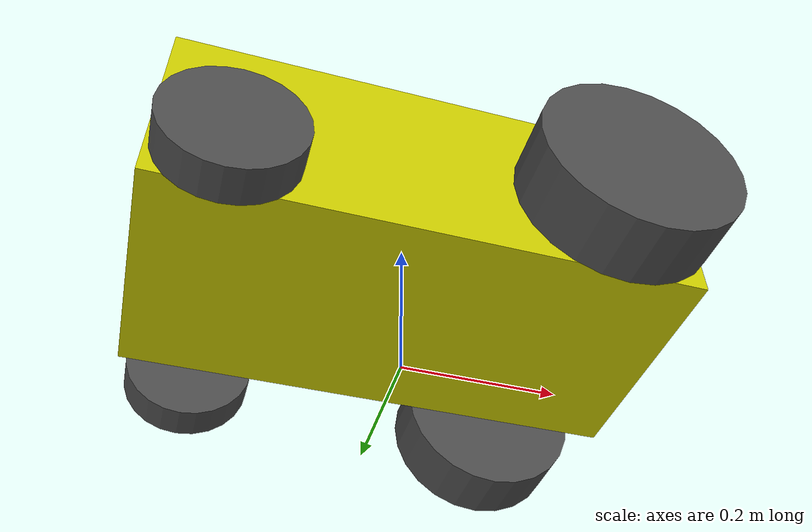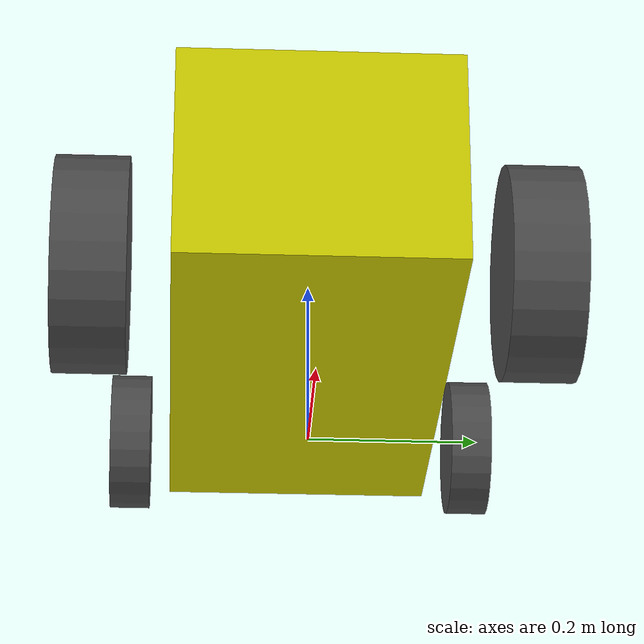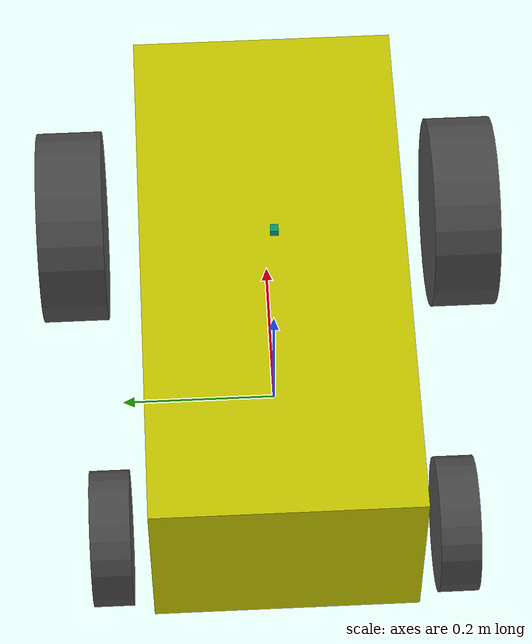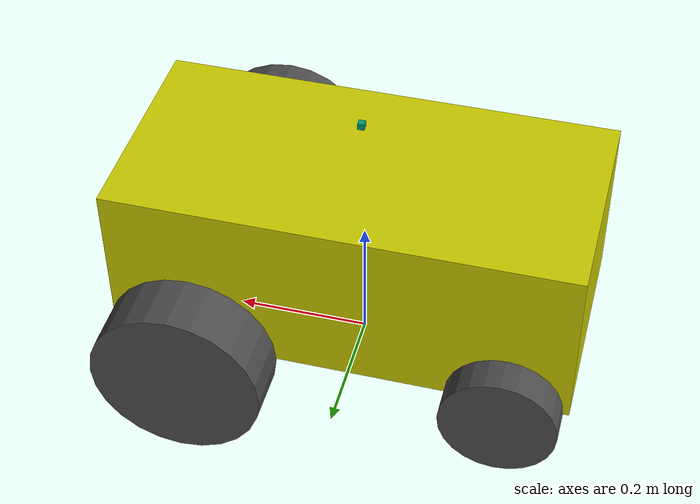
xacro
<?xml version="1.0"?>
<robot name="scrappy" xmlns:xacro="http://www.ros.org/wiki/xacro">

	<!-- Included URDF/XACRO Files -->
	<xacro:include filename="$(find bbblue_bot_description)/urdf/scrappy_materials.urdf.xacro" />
	<xacro:include filename="$(find bbblue_bot_description)/urdf/scrappy_wheel.urdf.xacro" />
	<xacro:include filename="$(find bbblue_bot_description)/urdf/scrappy_caster.urdf.xacro" />

	<!-- PROPERTY LIST -->
	<!--All units in m-kg-s-radians unit system -->
	<xacro:property name="M_PI" value="3.1415926535897931" />

	<!-- Main Body-base -->
	<xacro:property name="base_x_size" value="0.685" />
	<xacro:property name="base_y_size" value="0.33" />
	<xacro:property name="base_z_size" value="0.26" />
	<xacro:property name="base_mass" value="35" /> <!-- in kg-->

	<!--Inertial macros for the box and cylinder. Units are kg*m^2-->
	<xacro:macro name="box_inertia" params="m x y z">
		<inertia  ixx="${m*(y*y+z*z)/12}" ixy = "0" ixz = "0"
			iyy="${m*(x*x+z*z)/12}" iyz = "0"
			izz="${m*(x*x+z*z)/12}" />
	</xacro:macro>

	<!-- BASE-FOOTPRINT -->
	<!-- base_footprint is a fictitious link(frame) that is on the ground right below base_link origin -->
	<link name="base_footprint">
		<visual>
				<origin xyz="0 0 0" rpy="0 0 0" />
				<geometry>
						<box size="0.001 0.001 0.001" />
				</geometry>
		</visual>
		<inertial>
			<mass value="0.0001" />
			<origin xyz="0 0 0" />
			<inertia ixx="0.0001" ixy="0.0" ixz="0.0"
				iyy="0.0001" iyz="0.0"
				izz="0.0001" />
		</inertial>
	</link>

	<gazebo reference="base_footprint">
		<turnGravityOff>false</turnGravityOff>
	</gazebo>

	<joint name="base_footprint_joint" type="fixed">
	<origin xyz="0 0 0.2" rpy="0 0 0" />
		<parent link="base_footprint"/>
		<child link="base_link" />
	</joint>

	<!-- BASE-LINK -->
	<!--Actual body/chassis of the robot-->
	<link name="base_link">
		<visual>
			<origin xyz="0 0 0" rpy="0 0 0" />
			<geometry>
				<box size="${base_x_size} ${base_y_size} ${base_z_size}"/>
			</geometry>
			<material name="Yellow" />
		</visual>
		<inertial>
			<mass value="${base_mass}" />
			<origin xyz="0 0 0" />
			<!--The 3x3 rotational inertia matrix. -->
			<box_inertia  m="${base_mass}" x="${base_x_size}" y="${base_y_size}" z="${base_z_size}"/>
		</inertial>
		<collision>
			<origin xyz="0 0 0" rpy="0 0 0 " />
			<geometry>
				<box size="${base_x_size} ${base_y_size} ${base_z_size}"/>
			</geometry>
		</collision>
	</link>

	<joint name="laser_joint" type="fixed">
		<axis xyz="0 1 0" />
		<origin xyz="0.005 0 0.2"
		        rpy="3.1415927 0 0"/>
		<parent link="base_link"/>
		<child link="laser_link"/>
	</joint>

	<link name="laser_link">
	<collision>
	  <origin xyz="0 0 0"
	          rpy="0 0 0"/>
	  <geometry>
	    <box size="0.01
	               0.01
	               0.01"/>
	  </geometry>
	</collision>

	<visual>
	  <origin xyz="0 0 0"
	          rpy="0 0 0"/>
	  <geometry>
	    <box size="0.01 0.01 0.01"/>
	  </geometry>
	</visual>

	<inertial>
	  <mass value="1.0" />
	  <origin xyz="0 0 0"
	          rpy="0 0 0"/>
	  <box_inertia
	    m="1.0"
	    x="0.01"
	    y="0.01"
	    z="0.01"/>
	</inertial>
	</link>

	<!-- WHEELs -->
	<wheel name="right_wheel" parent="base_link" x="0.2" y="0.256" z="-0.075" radius="0.125" width="0.085" mass="2.5" />
	<wheel name="left_wheel" parent="base_link" x="0.2" y="-0.256" z="-0.075" radius="0.125" width="0.085" mass="2.5" />
	<caster name="back_right_caster" parent="base_link" x="-0.25" y="0.215" z="-0.10" radius="0.085" width="0.05" mass="2.5" />
	<caster name="back_left_caster" parent="base_link" x="-0.25" y="-0.215" z="-0.10" radius="0.085" width="0.05" mass="2.5" />

	<gazebo reference="base_link">
		<material>Gazebo/Yellow</material>
		<turnGravityOff>false</turnGravityOff>
	</gazebo>

	<gazebo>
		<plugin name="gazebo_ros_control" filename="libgazebo_ros_control.so">
			<robotSimType>gazebo_ros_control/DefaultRobotHWSim</robotSimType>
		</plugin>
	</gazebo>

  <gazebo reference="laser_link">
    <sensor type="ray" name="head_hokuyo_sensor">
      <pose>0 0 0 0 0 0</pose>
      <visualize>false</visualize>
      <update_rate>40</update_rate>
      <ray>
        <scan>
          <horizontal>
            <samples>720</samples>
            <resolution>1</resolution>
            <min_angle>-1.570796</min_angle>
            <max_angle>1.570796</max_angle>
          </horizontal>
        </scan>
        <range>
          <min>0.10</min>
          <max>30.0</max>
          <resolution>0.01</resolution>
        </range>
        <noise>
          <type>gaussian</type>
          <mean>0.0</mean>
          <stddev>0.01</stddev>
        </noise>
      </ray>
      <plugin name="gazebo_ros_head_hokuyo_controller" filename="libgazebo_ros_laser.so">
        <topicName>/scan</topicName>
        <frameName>laser_link</frameName>
        <visualize>true</visualize>
      </plugin>
    </sensor>
  </gazebo>

</robot>

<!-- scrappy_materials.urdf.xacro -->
<robot>
	<material name="Black">
		<color rgba="0.0 0.0 0.0 1.0"/>
	</material>

	<material name="Blue">
		<color rgba="0.0 0.0 0.8 1.0"/>
	</material>

	<material name="Green">
		<color rgba="0.0 0.8 0.0 1.0"/>
	</material>

	<material name="Gray">
		<color rgba="0.7 0.7 0.7 1.0"/>
	</material>

	<material name="DarkGray">
		<color rgba="0.3 0.3 0.3 1.0"/>
	</material>

	<material name="Red">
		<color rgba="0.8 0.0 0.0 1.0"/>
	</material>

	<material name="White">
		<color rgba="1.0 1.0 1.0 1.0"/>
	</material>

	<material name="Yellow">
		<color rgba="0.8 0.8 0.0 1.0"/>
	</material>
</robot>

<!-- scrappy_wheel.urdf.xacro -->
<robot name="wheel" xmlns:xacro="http://www.ros.org/wiki/xacro">

	<!-- Wheels -->

	<xacro:macro name="cylinder_inertia" params="m r h">
		<inertia  ixx="${m*(3*r*r+h*h)/12}" ixy = "0" ixz = "0"
			iyy="${m*(3*r*r+h*h)/12}" iyz = "0"
			izz="${m*r*r/2}" />
	</xacro:macro>

	<xacro:macro name="wheel" params="name parent radius width mass x y z"> <!--fb : front, back ; lr: left, right -->
		<xacro:property name="mass" value="2.5" /> <!-- in kg-->
		<link name="${name}">
			<visual>
				<origin xyz="0 0 0" rpy="${M_PI/2} 0 0" />
				<geometry>
					<cylinder length="${width}" radius="${radius}" />
				</geometry>
				<material name="DarkGray" />
			</visual>
			<collision>
				<origin xyz="0 0 0" rpy="${M_PI/2} 0 0" />
				<geometry>
					<cylinder length="${width}" radius="${radius}" />
				</geometry>
			</collision>
			<inertial>
				<mass value="${mass}" />
				<origin xyz="0 0 0" />
				<cylinder_inertia m="${mass}" r="${radius}" h="${width}" />
			</inertial>
		</link>

		<gazebo reference="${name}">
			<kp>1000000.0</kp>
			<kd>100.0</kd>
			<mu1>200.0</mu1>
			<mu2>100.0</mu2>
			<fdir1>1 0 0</fdir1>
			<maxVel>1.0</maxVel>
			<minDepth>0.00</minDepth>
			<implicitSpringDamper>1</implicitSpringDamper>
			<material>Gazebo/DarkGrey</material>
		</gazebo>

		<joint name="${name}_joint" type="continuous">
			<parent link="${parent}"/>
			<child link="${name}"/>
			<origin xyz="${x} ${y} ${z}" rpy="0 0 0" />
			<axis xyz="0 1 0" rpy="0 0 0" />
			<limit effort="100" velocity="100"/>
			<joint_properties damping="0.0" friction="0.0"/>
		</joint>

		<!-- Transmission is important to link the joints and the controller -->
		<transmission name="${name}_joint_trans">
			<type>transmission_interface/SimpleTransmission</type>
			<joint name="${name}_joint">
				<hardwareInterface>hardware_interface/VelocityJointInterface</hardwareInterface>
			</joint>
			<actuator name="${name}_joint_motor">
				<hardwareInterface>hardware_interface/VelocityJointInterface</hardwareInterface>
				<mechanicalReduction>1</mechanicalReduction>
			</actuator>
		</transmission>

	</xacro:macro>
</robot>

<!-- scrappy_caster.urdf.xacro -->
<robot name="wheel" xmlns:xacro="http://www.ros.org/wiki/xacro">

	<!-- Wheels -->

	<xacro:macro name="cylinder_inertia" params="m r h">
		<inertia  ixx="${m*(3*r*r+h*h)/12}" ixy = "0" ixz = "0"
			iyy="${m*(3*r*r+h*h)/12}" iyz = "0"
			izz="${m*r*r/2}" />
	</xacro:macro>

	<xacro:macro name="caster" params="name parent radius width mass x y z"> <!--fb : front, back ; lr: left, right -->
		<xacro:property name="mass" value="0.5" /> <!-- in kg-->
		<link name="${name}">
			<visual>
				<origin xyz="0 0 0" rpy="${M_PI/2} 0 0" />
				<geometry>
					<cylinder length="${width}" radius="${radius}" />
				</geometry>
				<material name="DarkGray" />
			</visual>
			<collision>
				<origin xyz="0 0 0" rpy="${M_PI/2} 0 0" />
				<geometry>
					<cylinder length="${width}" radius="${radius}" />
				</geometry>
			</collision>
			<inertial>
				<mass value="${mass}" />
				<origin xyz="0 0 0" />
				<cylinder_inertia m="${mass}" r="${radius}" h="${width}" />
			</inertial>
		</link>

		<gazebo reference="${name}">
			<kp>1000000.0</kp>
			<kd>100.0</kd>
			<mu1>0.25</mu1>
			<mu2>0.15</mu2>
			<fdir1>1 0 0</fdir1>
			<maxVel>1.0</maxVel>
			<minDepth>0.00</minDepth>
			<implicitSpringDamper>1</implicitSpringDamper>
			<material>Gazebo/DarkGrey</material>
		</gazebo>

		<joint name="${name}_joint" type="fixed">
			<parent link="${parent}"/>
			<child link="${name}"/>
			<origin xyz="${x} ${y} ${z}" rpy="0 0 0" />
			<axis xyz="0 1 0" rpy="0 0 0" />
			<limit effort="100" velocity="100"/>
			<joint_properties damping="0.0" friction="0.0"/>
		</joint>

	</xacro:macro>
</robot>
